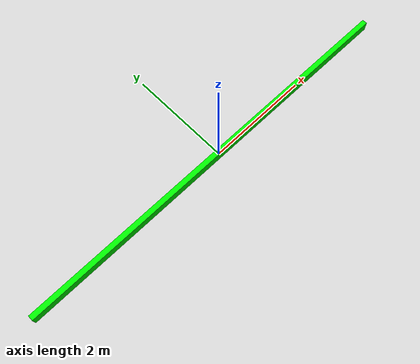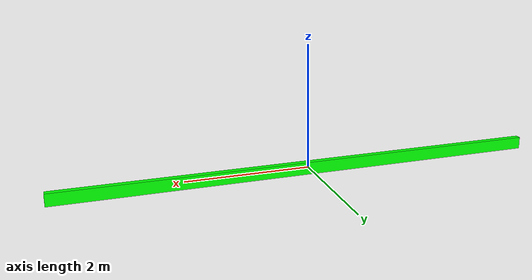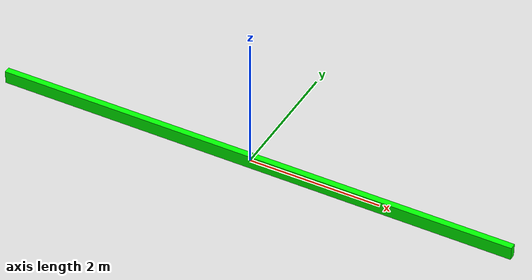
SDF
<sdf version="1.6">
    <model name="border">
        <static>true</static>
        <link name='border'>
            <visual name='visual'>
                <geometry>
                    <box>
                        <size>8 0.1 0.2</size>
                    </box>
                </geometry>
                <material>
                    <ambient>0.0 1.0 0.0 1</ambient>
                    <diffuse>0.0 1.0 0.0 1</diffuse>
                    <specular>0.0 1.0 0.0 1</specular>
                </material>
            </visual>
            <collision name='collision'>
                <geometry>
                    <box>
                        <size>8 0.1 0.2</size>
                    </box>
                </geometry>
            </collision>
        </link>
    </model>
</sdf>
